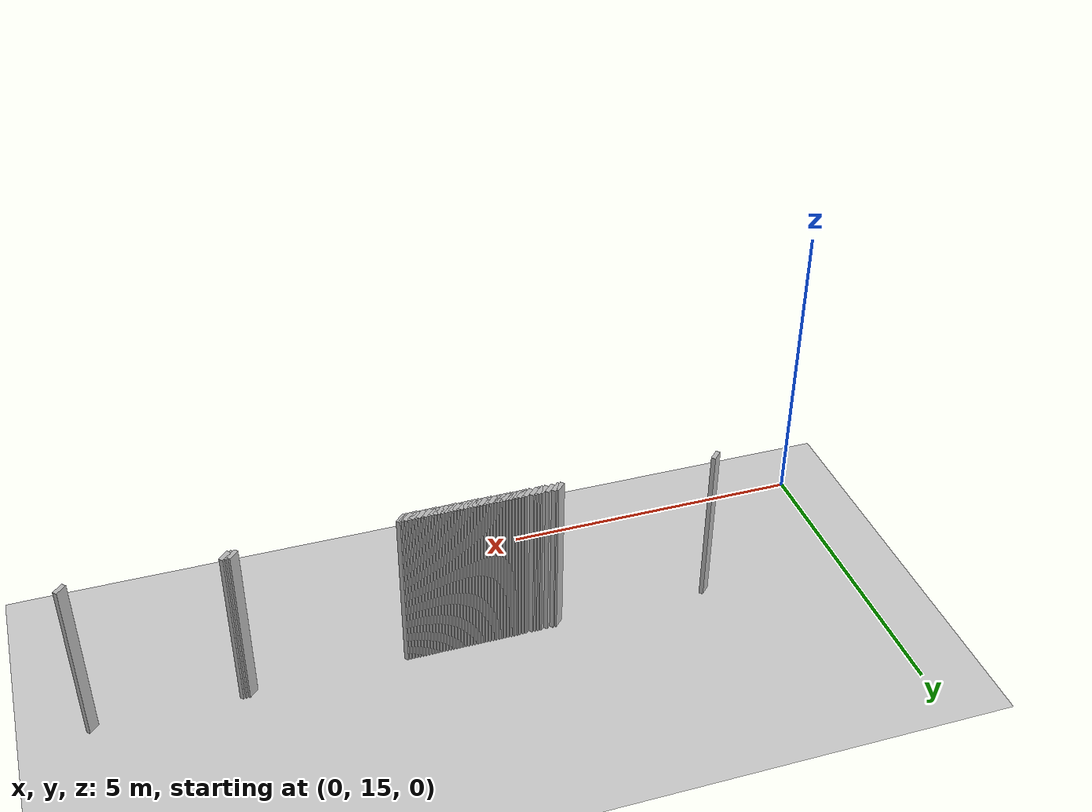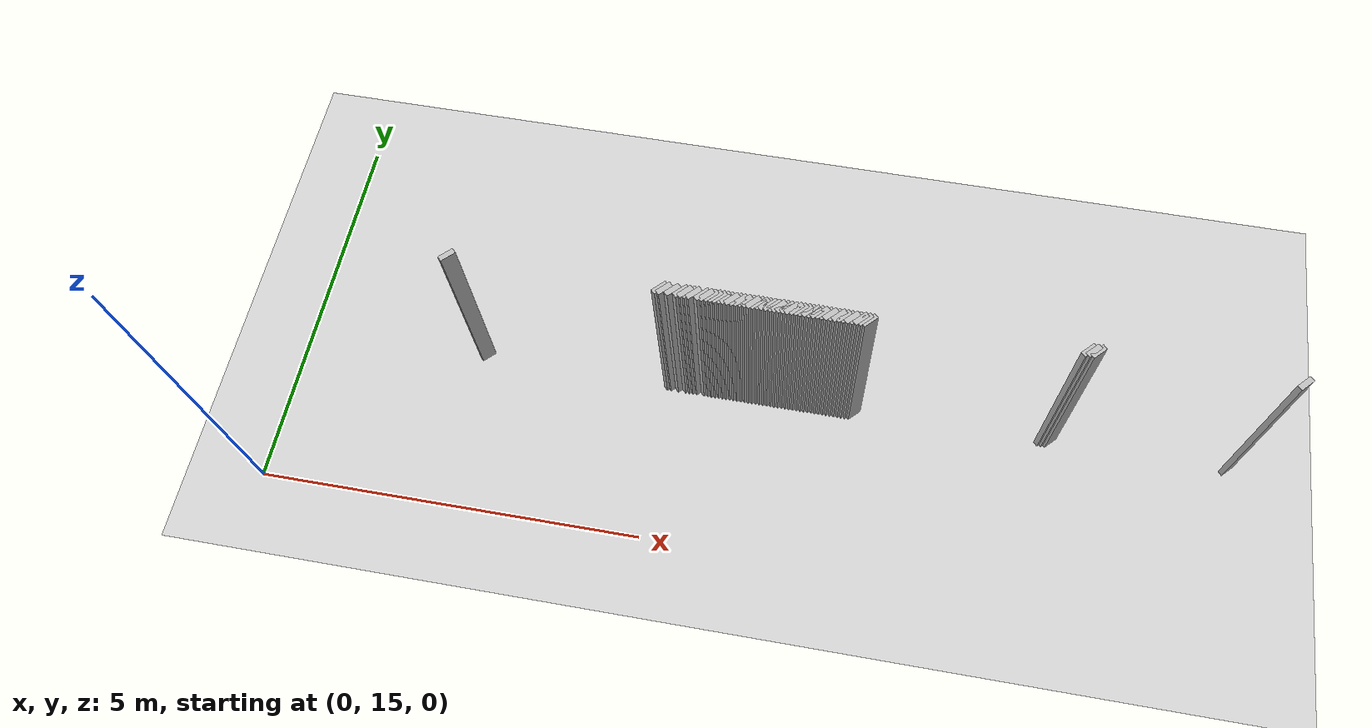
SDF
<sdf version="1.5">
 <world name="default">
  <include><uri>model://ground_plane</uri></include>
  <include><uri>model://sun</uri></include>
  <model name="grey_wall_162">
   <static>1</static>
   <link name="link">
    <pose>9.950000000000001 17.2  1.4 0 0 -0.7853981633974128</pose>
    <collision name="collision">
     <geometry><box><size>0.07071067811865325 .2  2.8</size></box></geometry>
    </collision>
    <visual name="visual">
     <cast_shadows>0</cast_shadows>
     <geometry><box><size>0.07071067811865325 .2  2.8</size></box></geometry>
    </visual>
   </link>
  </model>
  <model name="grey_wall_163">
   <static>1</static>
   <link name="link">
    <pose>10.0 17.2  1.4 0 0 -0.7853981633974128</pose>
    <collision name="collision">
     <geometry><box><size>0.07071067811865325 .2  2.8</size></box></geometry>
    </collision>
    <visual name="visual">
     <cast_shadows>0</cast_shadows>
     <geometry><box><size>0.07071067811865325 .2  2.8</size></box></geometry>
    </visual>
   </link>
  </model>
  <model name="grey_wall_164">
   <static>1</static>
   <link name="link">
    <pose>10.05 17.2  1.4 0 0 -0.7853981633974128</pose>
    <collision name="collision">
     <geometry><box><size>0.07071067811865325 .2  2.8</size></box></geometry>
    </collision>
    <visual name="visual">
     <cast_shadows>0</cast_shadows>
     <geometry><box><size>0.07071067811865325 .2  2.8</size></box></geometry>
    </visual>
   </link>
  </model>
  <model name="grey_wall_165">
   <static>1</static>
   <link name="link">
    <pose>12.350000000000001 17.2  1.4 0 0 -0.7853981633974128</pose>
    <collision name="collision">
     <geometry><box><size>0.07071067811865325 .2  2.8</size></box></geometry>
    </collision>
    <visual name="visual">
     <cast_shadows>0</cast_shadows>
     <geometry><box><size>0.07071067811865325 .2  2.8</size></box></geometry>
    </visual>
   </link>
  </model>
  <model name="grey_wall_166">
   <static>1</static>
   <link name="link">
    <pose>2.45 17.150000000000002  1.4 0 0 -0.7853981633974216</pose>
    <collision name="collision">
     <geometry><box><size>0.07071067811865261 .2  2.8</size></box></geometry>
    </collision>
    <visual name="visual">
     <cast_shadows>0</cast_shadows>
     <geometry><box><size>0.07071067811865261 .2  2.8</size></box></geometry>
    </visual>
   </link>
  </model>
  <model name="grey_wall_167">
   <static>1</static>
   <link name="link">
    <pose>5.0 17.150000000000002  1.4 0 0 -0.7853981633974128</pose>
    <collision name="collision">
     <geometry><box><size>0.07071067811865325 .2  2.8</size></box></geometry>
    </collision>
    <visual name="visual">
     <cast_shadows>0</cast_shadows>
     <geometry><box><size>0.07071067811865325 .2  2.8</size></box></geometry>
    </visual>
   </link>
  </model>
  <model name="grey_wall_168">
   <static>1</static>
   <link name="link">
    <pose>5.050000000000001 17.150000000000002  1.4 0 0 -0.7853981633974128</pose>
    <collision name="collision">
     <geometry><box><size>0.07071067811865325 .2  2.8</size></box></geometry>
    </collision>
    <visual name="visual">
     <cast_shadows>0</cast_shadows>
     <geometry><box><size>0.07071067811865325 .2  2.8</size></box></geometry>
    </visual>
   </link>
  </model>
  <model name="grey_wall_169">
   <static>1</static>
   <link name="link">
    <pose>5.15 17.150000000000002  1.4 0 0 -0.7853981633974128</pose>
    <collision name="collision">
     <geometry><box><size>0.07071067811865325 .2  2.8</size></box></geometry>
    </collision>
    <visual name="visual">
     <cast_shadows>0</cast_shadows>
     <geometry><box><size>0.07071067811865325 .2  2.8</size></box></geometry>
    </visual>
   </link>
  </model>
  <model name="grey_wall_170">
   <static>1</static>
   <link name="link">
    <pose>5.25 17.150000000000002  1.4 0 0 -0.7853981633974128</pose>
    <collision name="collision">
     <geometry><box><size>0.07071067811865325 .2  2.8</size></box></geometry>
    </collision>
    <visual name="visual">
     <cast_shadows>0</cast_shadows>
     <geometry><box><size>0.07071067811865325 .2  2.8</size></box></geometry>
    </visual>
   </link>
  </model>
  <model name="grey_wall_171">
   <static>1</static>
   <link name="link">
    <pose>5.300000000000001 17.150000000000002  1.4 0 0 -0.7853981633974128</pose>
    <collision name="collision">
     <geometry><box><size>0.07071067811865325 .2  2.8</size></box></geometry>
    </collision>
    <visual name="visual">
     <cast_shadows>0</cast_shadows>
     <geometry><box><size>0.07071067811865325 .2  2.8</size></box></geometry>
    </visual>
   </link>
  </model>
  <model name="grey_wall_172">
   <static>1</static>
   <link name="link">
    <pose>5.3500000000000005 17.150000000000002  1.4 0 0 -0.7853981633974128</pose>
    <collision name="collision">
     <geometry><box><size>0.07071067811865325 .2  2.8</size></box></geometry>
    </collision>
    <visual name="visual">
     <cast_shadows>0</cast_shadows>
     <geometry><box><size>0.07071067811865325 .2  2.8</size></box></geometry>
    </visual>
   </link>
  </model>
  <model name="grey_wall_173">
   <static>1</static>
   <link name="link">
    <pose>5.4 17.150000000000002  1.4 0 0 -0.7853981633974128</pose>
    <collision name="collision">
     <geometry><box><size>0.07071067811865325 .2  2.8</size></box></geometry>
    </collision>
    <visual name="visual">
     <cast_shadows>0</cast_shadows>
     <geometry><box><size>0.07071067811865325 .2  2.8</size></box></geometry>
    </visual>
   </link>
  </model>
  <model name="grey_wall_174">
   <static>1</static>
   <link name="link">
    <pose>5.5 17.150000000000002  1.4 0 0 -0.7853981633974128</pose>
    <collision name="collision">
     <geometry><box><size>0.07071067811865325 .2  2.8</size></box></geometry>
    </collision>
    <visual name="visual">
     <cast_shadows>0</cast_shadows>
     <geometry><box><size>0.07071067811865325 .2  2.8</size></box></geometry>
    </visual>
   </link>
  </model>
  <model name="grey_wall_175">
   <static>1</static>
   <link name="link">
    <pose>5.550000000000001 17.150000000000002  1.4 0 0 -0.7853981633974128</pose>
    <collision name="collision">
     <geometry><box><size>0.07071067811865325 .2  2.8</size></box></geometry>
    </collision>
    <visual name="visual">
     <cast_shadows>0</cast_shadows>
     <geometry><box><size>0.07071067811865325 .2  2.8</size></box></geometry>
    </visual>
   </link>
  </model>
  <model name="grey_wall_176">
   <static>1</static>
   <link name="link">
    <pose>5.6000000000000005 17.150000000000002  1.4 0 0 -0.7853981633974128</pose>
    <collision name="collision">
     <geometry><box><size>0.07071067811865325 .2  2.8</size></box></geometry>
    </collision>
    <visual name="visual">
     <cast_shadows>0</cast_shadows>
     <geometry><box><size>0.07071067811865325 .2  2.8</size></box></geometry>
    </visual>
   </link>
  </model>
  <model name="grey_wall_177">
   <static>1</static>
   <link name="link">
    <pose>5.65 17.150000000000002  1.4 0 0 -0.7853981633974128</pose>
    <collision name="collision">
     <geometry><box><size>0.07071067811865325 .2  2.8</size></box></geometry>
    </collision>
    <visual name="visual">
     <cast_shadows>0</cast_shadows>
     <geometry><box><size>0.07071067811865325 .2  2.8</size></box></geometry>
    </visual>
   </link>
  </model>
  <model name="grey_wall_178">
   <static>1</static>
   <link name="link">
    <pose>5.7 17.150000000000002  1.4 0 0 -0.7853981633974128</pose>
    <collision name="collision">
     <geometry><box><size>0.07071067811865325 .2  2.8</size></box></geometry>
    </collision>
    <visual name="visual">
     <cast_shadows>0</cast_shadows>
     <geometry><box><size>0.07071067811865325 .2  2.8</size></box></geometry>
    </visual>
   </link>
  </model>
  <model name="grey_wall_179">
   <static>1</static>
   <link name="link">
    <pose>5.75 17.150000000000002  1.4 0 0 -0.7853981633974128</pose>
    <collision name="collision">
     <geometry><box><size>0.07071067811865325 .2  2.8</size></box></geometry>
    </collision>
    <visual name="visual">
     <cast_shadows>0</cast_shadows>
     <geometry><box><size>0.07071067811865325 .2  2.8</size></box></geometry>
    </visual>
   </link>
  </model>
  <model name="grey_wall_180">
   <static>1</static>
   <link name="link">
    <pose>5.800000000000001 17.150000000000002  1.4 0 0 -0.7853981633974128</pose>
    <collision name="collision">
     <geometry><box><size>0.07071067811865325 .2  2.8</size></box></geometry>
    </collision>
    <visual name="visual">
     <cast_shadows>0</cast_shadows>
     <geometry><box><size>0.07071067811865325 .2  2.8</size></box></geometry>
    </visual>
   </link>
  </model>
  <model name="grey_wall_181">
   <static>1</static>
   <link name="link">
    <pose>5.8500000000000005 17.150000000000002  1.4 0 0 -0.7853981633974128</pose>
    <collision name="collision">
     <geometry><box><size>0.07071067811865325 .2  2.8</size></box></geometry>
    </collision>
    <visual name="visual">
     <cast_shadows>0</cast_shadows>
     <geometry><box><size>0.07071067811865325 .2  2.8</size></box></geometry>
    </visual>
   </link>
  </model>
  <model name="grey_wall_182">
   <static>1</static>
   <link name="link">
    <pose>5.9 17.150000000000002  1.4 0 0 -0.7853981633974128</pose>
    <collision name="collision">
     <geometry><box><size>0.07071067811865325 .2  2.8</size></box></geometry>
    </collision>
    <visual name="visual">
     <cast_shadows>0</cast_shadows>
     <geometry><box><size>0.07071067811865325 .2  2.8</size></box></geometry>
    </visual>
   </link>
  </model>
  <model name="grey_wall_183">
   <static>1</static>
   <link name="link">
    <pose>5.95 17.150000000000002  1.4 0 0 -0.7853981633974128</pose>
    <collision name="collision">
     <geometry><box><size>0.07071067811865325 .2  2.8</size></box></geometry>
    </collision>
    <visual name="visual">
     <cast_shadows>0</cast_shadows>
     <geometry><box><size>0.07071067811865325 .2  2.8</size></box></geometry>
    </visual>
   </link>
  </model>
  <model name="grey_wall_184">
   <static>1</static>
   <link name="link">
    <pose>6.0 17.150000000000002  1.4 0 0 -0.7853981633974128</pose>
    <collision name="collision">
     <geometry><box><size>0.07071067811865325 .2  2.8</size></box></geometry>
    </collision>
    <visual name="visual">
     <cast_shadows>0</cast_shadows>
     <geometry><box><size>0.07071067811865325 .2  2.8</size></box></geometry>
    </visual>
   </link>
  </model>
  <model name="grey_wall_185">
   <static>1</static>
   <link name="link">
    <pose>6.050000000000001 17.150000000000002  1.4 0 0 -0.7853981633974128</pose>
    <collision name="collision">
     <geometry><box><size>0.07071067811865325 .2  2.8</size></box></geometry>
    </collision>
    <visual name="visual">
     <cast_shadows>0</cast_shadows>
     <geometry><box><size>0.07071067811865325 .2  2.8</size></box></geometry>
    </visual>
   </link>
  </model>
  <model name="grey_wall_186">
   <static>1</static>
   <link name="link">
    <pose>6.1000000000000005 17.150000000000002  1.4 0 0 -0.7853981633974128</pose>
    <collision name="collision">
     <geometry><box><size>0.07071067811865325 .2  2.8</size></box></geometry>
    </collision>
    <visual name="visual">
     <cast_shadows>0</cast_shadows>
     <geometry><box><size>0.07071067811865325 .2  2.8</size></box></geometry>
    </visual>
   </link>
  </model>
  <model name="grey_wall_187">
   <static>1</static>
   <link name="link">
    <pose>6.15 17.150000000000002  1.4 0 0 -0.7853981633974128</pose>
    <collision name="collision">
     <geometry><box><size>0.07071067811865325 .2  2.8</size></box></geometry>
    </collision>
    <visual name="visual">
     <cast_shadows>0</cast_shadows>
     <geometry><box><size>0.07071067811865325 .2  2.8</size></box></geometry>
    </visual>
   </link>
  </model>
  <model name="grey_wall_188">
   <static>1</static>
   <link name="link">
    <pose>6.2 17.150000000000002  1.4 0 0 -0.7853981633974128</pose>
    <collision name="collision">
     <geometry><box><size>0.07071067811865325 .2  2.8</size></box></geometry>
    </collision>
    <visual name="visual">
     <cast_shadows>0</cast_shadows>
     <geometry><box><size>0.07071067811865325 .2  2.8</size></box></geometry>
    </visual>
   </link>
  </model>
  <model name="grey_wall_189">
   <static>1</static>
   <link name="link">
    <pose>6.25 17.150000000000002  1.4 0 0 -0.7853981633974128</pose>
    <collision name="collision">
     <geometry><box><size>0.07071067811865325 .2  2.8</size></box></geometry>
    </collision>
    <visual name="visual">
     <cast_shadows>0</cast_shadows>
     <geometry><box><size>0.07071067811865325 .2  2.8</size></box></geometry>
    </visual>
   </link>
  </model>
  <model name="grey_wall_190">
   <static>1</static>
   <link name="link">
    <pose>6.300000000000001 17.150000000000002  1.4 0 0 -0.7853981633974128</pose>
    <collision name="collision">
     <geometry><box><size>0.07071067811865325 .2  2.8</size></box></geometry>
    </collision>
    <visual name="visual">
     <cast_shadows>0</cast_shadows>
     <geometry><box><size>0.07071067811865325 .2  2.8</size></box></geometry>
    </visual>
   </link>
  </model>
  <model name="grey_wall_191">
   <static>1</static>
   <link name="link">
    <pose>6.3500000000000005 17.150000000000002  1.4 0 0 -0.7853981633974128</pose>
    <collision name="collision">
     <geometry><box><size>0.07071067811865325 .2  2.8</size></box></geometry>
    </collision>
    <visual name="visual">
     <cast_shadows>0</cast_shadows>
     <geometry><box><size>0.07071067811865325 .2  2.8</size></box></geometry>
    </visual>
   </link>
  </model>
  <model name="grey_wall_192">
   <static>1</static>
   <link name="link">
    <pose>6.4 17.150000000000002  1.4 0 0 -0.7853981633974128</pose>
    <collision name="collision">
     <geometry><box><size>0.07071067811865325 .2  2.8</size></box></geometry>
    </collision>
    <visual name="visual">
     <cast_shadows>0</cast_shadows>
     <geometry><box><size>0.07071067811865325 .2  2.8</size></box></geometry>
    </visual>
   </link>
  </model>
  <model name="grey_wall_193">
   <static>1</static>
   <link name="link">
    <pose>6.45 17.150000000000002  1.4 0 0 -0.7853981633974128</pose>
    <collision name="collision">
     <geometry><box><size>0.07071067811865325 .2  2.8</size></box></geometry>
    </collision>
    <visual name="visual">
     <cast_shadows>0</cast_shadows>
     <geometry><box><size>0.07071067811865325 .2  2.8</size></box></geometry>
    </visual>
   </link>
  </model>
  <model name="grey_wall_194">
   <static>1</static>
   <link name="link">
    <pose>6.5 17.150000000000002  1.4 0 0 -0.7853981633974128</pose>
    <collision name="collision">
     <geometry><box><size>0.07071067811865325 .2  2.8</size></box></geometry>
    </collision>
    <visual name="visual">
     <cast_shadows>0</cast_shadows>
     <geometry><box><size>0.07071067811865325 .2  2.8</size></box></geometry>
    </visual>
   </link>
  </model>
  <model name="grey_wall_195">
   <static>1</static>
   <link name="link">
    <pose>6.550000000000001 17.150000000000002  1.4 0 0 -0.7853981633974128</pose>
    <collision name="collision">
     <geometry><box><size>0.07071067811865325 .2  2.8</size></box></geometry>
    </collision>
    <visual name="visual">
     <cast_shadows>0</cast_shadows>
     <geometry><box><size>0.07071067811865325 .2  2.8</size></box></geometry>
    </visual>
   </link>
  </model>
  <model name="grey_wall_196">
   <static>1</static>
   <link name="link">
    <pose>6.6000000000000005 17.150000000000002  1.4 0 0 -0.7853981633974128</pose>
    <collision name="collision">
     <geometry><box><size>0.07071067811865325 .2  2.8</size></box></geometry>
    </collision>
    <visual name="visual">
     <cast_shadows>0</cast_shadows>
     <geometry><box><size>0.07071067811865325 .2  2.8</size></box></geometry>
    </visual>
   </link>
  </model>
  <model name="grey_wall_197">
   <static>1</static>
   <link name="link">
    <pose>6.65 17.150000000000002  1.4 0 0 -0.7853981633974128</pose>
    <collision name="collision">
     <geometry><box><size>0.07071067811865325 .2  2.8</size></box></geometry>
    </collision>
    <visual name="visual">
     <cast_shadows>0</cast_shadows>
     <geometry><box><size>0.07071067811865325 .2  2.8</size></box></geometry>
    </visual>
   </link>
  </model>
  <model name="grey_wall_198">
   <static>1</static>
   <link name="link">
    <pose>6.7 17.150000000000002  1.4 0 0 -0.7853981633974128</pose>
    <collision name="collision">
     <geometry><box><size>0.07071067811865325 .2  2.8</size></box></geometry>
    </collision>
    <visual name="visual">
     <cast_shadows>0</cast_shadows>
     <geometry><box><size>0.07071067811865325 .2  2.8</size></box></geometry>
    </visual>
   </link>
  </model>
  <model name="grey_wall_199">
   <static>1</static>
   <link name="link">
    <pose>6.75 17.150000000000002  1.4 0 0 -0.7853981633974128</pose>
    <collision name="collision">
     <geometry><box><size>0.07071067811865325 .2  2.8</size></box></geometry>
    </collision>
    <visual name="visual">
     <cast_shadows>0</cast_shadows>
     <geometry><box><size>0.07071067811865325 .2  2.8</size></box></geometry>
    </visual>
   </link>
  </model>
  <model name="grey_wall_200">
   <static>1</static>
   <link name="link">
    <pose>6.800000000000001 17.150000000000002  1.4 0 0 -0.7853981633974128</pose>
    <collision name="collision">
     <geometry><box><size>0.07071067811865325 .2  2.8</size></box></geometry>
    </collision>
    <visual name="visual">
     <cast_shadows>0</cast_shadows>
     <geometry><box><size>0.07071067811865325 .2  2.8</size></box></geometry>
    </visual>
   </link>
  </model>
  <model name="grey_wall_201">
   <static>1</static>
   <link name="link">
    <pose>6.8500000000000005 17.150000000000002  1.4 0 0 -0.7853981633974128</pose>
    <collision name="collision">
     <geometry><box><size>0.07071067811865325 .2  2.8</size></box></geometry>
    </collision>
    <visual name="visual">
     <cast_shadows>0</cast_shadows>
     <geometry><box><size>0.07071067811865325 .2  2.8</size></box></geometry>
    </visual>
   </link>
  </model>
  <model name="grey_wall_202">
   <static>1</static>
   <link name="link">
    <pose>6.9 17.150000000000002  1.4 0 0 -0.7853981633974128</pose>
    <collision name="collision">
     <geometry><box><size>0.07071067811865325 .2  2.8</size></box></geometry>
    </collision>
    <visual name="visual">
     <cast_shadows>0</cast_shadows>
     <geometry><box><size>0.07071067811865325 .2  2.8</size></box></geometry>
    </visual>
   </link>
  </model>
  <model name="grey_wall_203">
   <static>1</static>
   <link name="link">
    <pose>6.95 17.150000000000002  1.4 0 0 -0.7853981633974128</pose>
    <collision name="collision">
     <geometry><box><size>0.07071067811865325 .2  2.8</size></box></geometry>
    </collision>
    <visual name="visual">
     <cast_shadows>0</cast_shadows>
     <geometry><box><size>0.07071067811865325 .2  2.8</size></box></geometry>
    </visual>
   </link>
  </model>
  <model name="grey_wall_204">
   <static>1</static>
   <link name="link">
    <pose>7.0 17.150000000000002  1.4 0 0 -0.7853981633974128</pose>
    <collision name="collision">
     <geometry><box><size>0.07071067811865325 .2  2.8</size></box></geometry>
    </collision>
    <visual name="visual">
     <cast_shadows>0</cast_shadows>
     <geometry><box><size>0.07071067811865325 .2  2.8</size></box></geometry>
    </visual>
   </link>
  </model>
  <model name="grey_wall_205">
   <static>1</static>
   <link name="link">
    <pose>7.050000000000001 17.150000000000002  1.4 0 0 -0.7853981633974128</pose>
    <collision name="collision">
     <geometry><box><size>0.07071067811865325 .2  2.8</size></box></geometry>
    </collision>
    <visual name="visual">
     <cast_shadows>0</cast_shadows>
     <geometry><box><size>0.07071067811865325 .2  2.8</size></box></geometry>
    </visual>
   </link>
  </model>
  <model name="grey_wall_206">
   <static>1</static>
   <link name="link">
    <pose>7.1000000000000005 17.150000000000002  1.4 0 0 -0.7853981633974128</pose>
    <collision name="collision">
     <geometry><box><size>0.07071067811865325 .2  2.8</size></box></geometry>
    </collision>
    <visual name="visual">
     <cast_shadows>0</cast_shadows>
     <geometry><box><size>0.07071067811865325 .2  2.8</size></box></geometry>
    </visual>
   </link>
  </model>
  <model name="grey_wall_207">
   <static>1</static>
   <link name="link">
    <pose>7.15 17.150000000000002  1.4 0 0 -0.7853981633974128</pose>
    <collision name="collision">
     <geometry><box><size>0.07071067811865325 .2  2.8</size></box></geometry>
    </collision>
    <visual name="visual">
     <cast_shadows>0</cast_shadows>
     <geometry><box><size>0.07071067811865325 .2  2.8</size></box></geometry>
    </visual>
   </link>
  </model>
  <model name="grey_wall_208">
   <static>1</static>
   <link name="link">
    <pose>7.2 17.150000000000002  1.4 0 0 -0.7853981633974128</pose>
    <collision name="collision">
     <geometry><box><size>0.07071067811865325 .2  2.8</size></box></geometry>
    </collision>
    <visual name="visual">
     <cast_shadows>0</cast_shadows>
     <geometry><box><size>0.07071067811865325 .2  2.8</size></box></geometry>
    </visual>
   </link>
  </model>
  <model name="grey_wall_209">
   <static>1</static>
   <link name="link">
    <pose>7.25 17.150000000000002  1.4 0 0 -0.7853981633974128</pose>
    <collision name="collision">
     <geometry><box><size>0.07071067811865325 .2  2.8</size></box></geometry>
    </collision>
    <visual name="visual">
     <cast_shadows>0</cast_shadows>
     <geometry><box><size>0.07071067811865325 .2  2.8</size></box></geometry>
    </visual>
   </link>
  </model>
  <model name="grey_wall_210">
   <static>1</static>
   <link name="link">
    <pose>7.300000000000001 17.150000000000002  1.4 0 0 -0.7853981633974128</pose>
    <collision name="collision">
     <geometry><box><size>0.07071067811865325 .2  2.8</size></box></geometry>
    </collision>
    <visual name="visual">
     <cast_shadows>0</cast_shadows>
     <geometry><box><size>0.07071067811865325 .2  2.8</size></box></geometry>
    </visual>
   </link>
  </model>
  <model name="grey_wall_211">
   <static>1</static>
   <link name="link">
    <pose>7.3500000000000005 17.150000000000002  1.4 0 0 -0.7853981633974128</pose>
    <collision name="collision">
     <geometry><box><size>0.07071067811865325 .2  2.8</size></box></geometry>
    </collision>
    <visual name="visual">
     <cast_shadows>0</cast_shadows>
     <geometry><box><size>0.07071067811865325 .2  2.8</size></box></geometry>
    </visual>
   </link>
  </model>
  <model name="grey_wall_212">
   <static>1</static>
   <link name="link">
    <pose>7.4 17.150000000000002  1.4 0 0 -0.7853981633974128</pose>
    <collision name="collision">
     <geometry><box><size>0.07071067811865325 .2  2.8</size></box></geometry>
    </collision>
    <visual name="visual">
     <cast_shadows>0</cast_shadows>
     <geometry><box><size>0.07071067811865325 .2  2.8</size></box></geometry>
    </visual>
   </link>
  </model>
  <model name="grey_wall_213">
   <static>1</static>
   <link name="link">
    <pose>7.45 17.150000000000002  1.4 0 0 -0.7853981633974128</pose>
    <collision name="collision">
     <geometry><box><size>0.07071067811865325 .2  2.8</size></box></geometry>
    </collision>
    <visual name="visual">
     <cast_shadows>0</cast_shadows>
     <geometry><box><size>0.07071067811865325 .2  2.8</size></box></geometry>
    </visual>
   </link>
  </model>
 </world>
</sdf>
